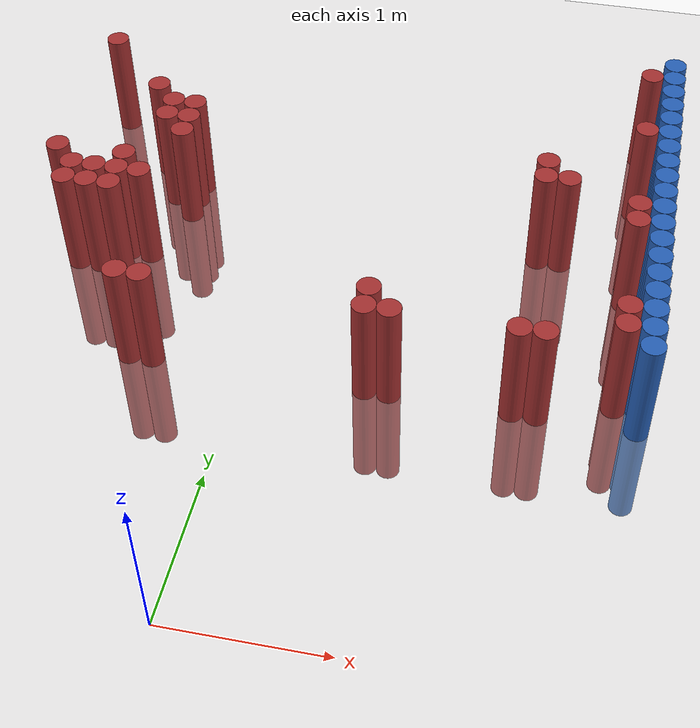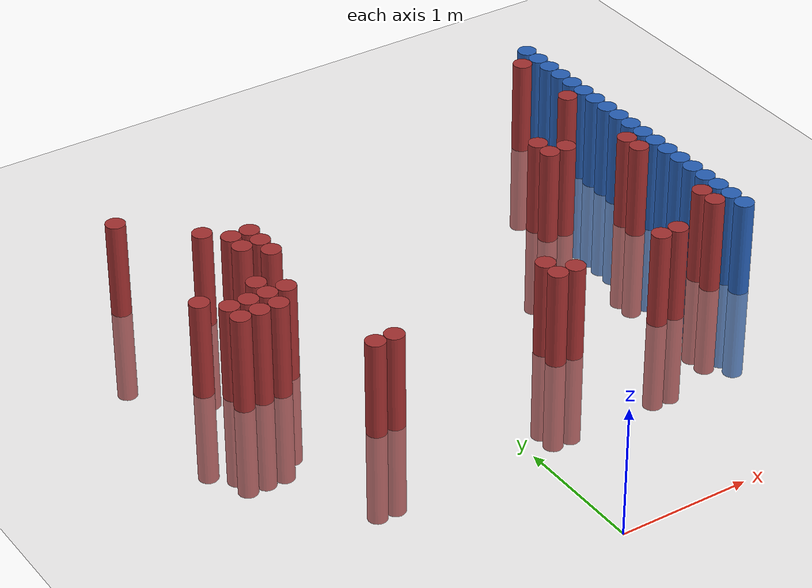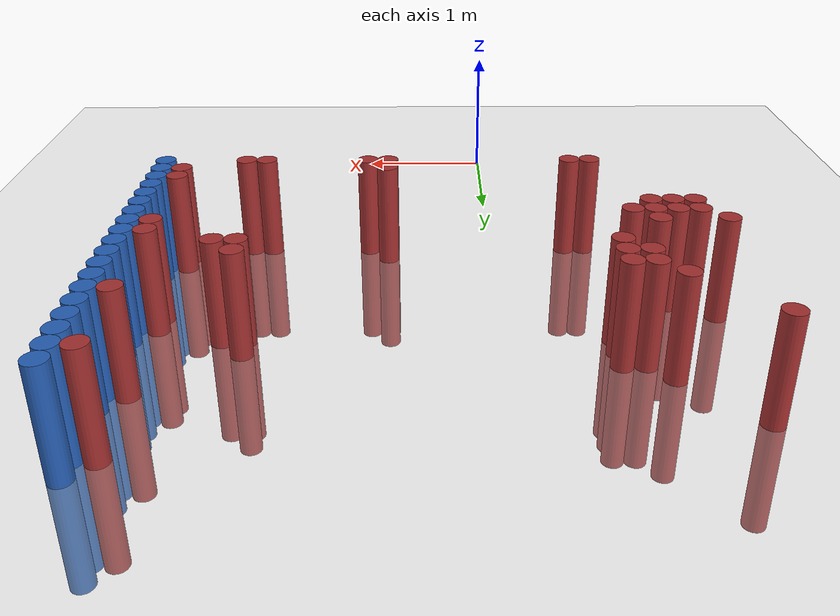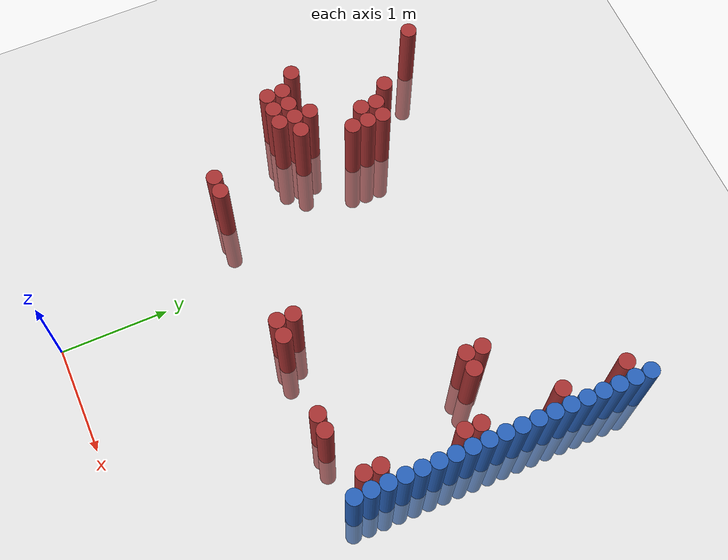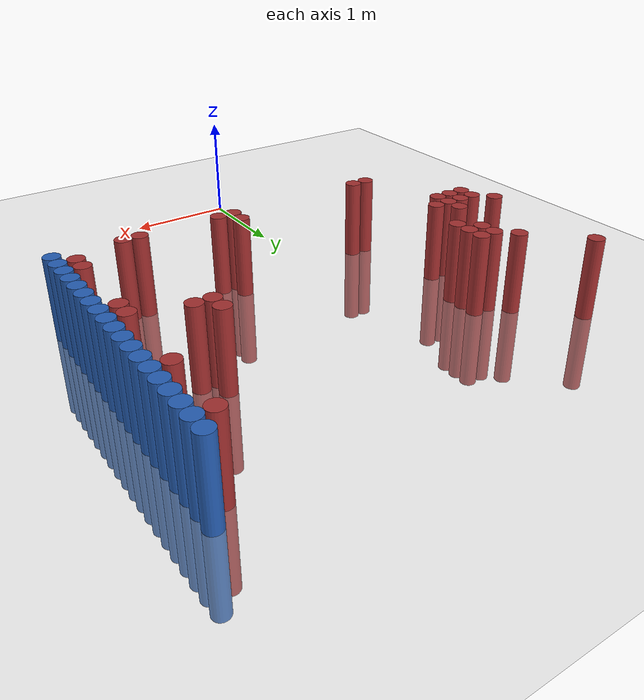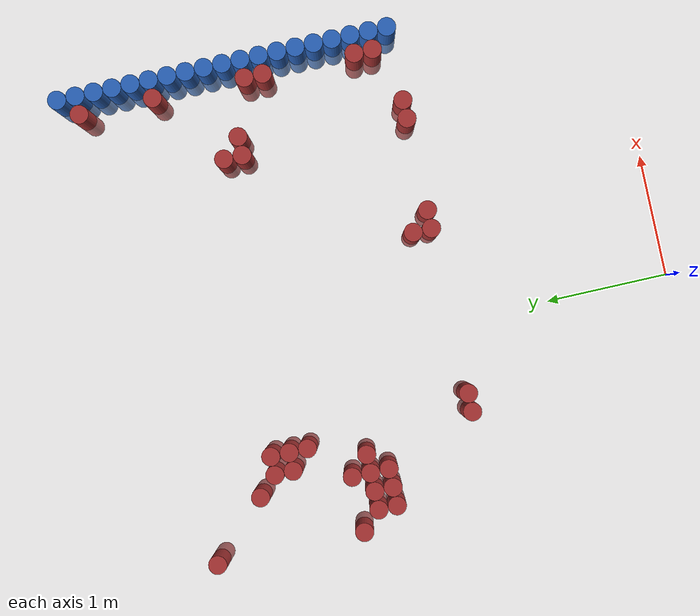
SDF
<sdf version="1.6">
 <world name="default">
  <model name="ground_plane">
   <static>1</static>
   <link name="link">
    <collision name="collision">
     <geometry><plane><normal>0 0 1</normal><size>100 100</size></plane></geometry>
     <surface><friction><ode><mu>100</mu><mu2>50</mu2></ode></friction></surface>
    </collision>
    <visual name="visual">
     <cast_shadows>0</cast_shadows>
     <geometry><plane><normal>0 0 1</normal><size>100 100</size></plane></geometry>
     <material>
      <script><uri>file://media/materials/scripts/gazebo.material</uri><name>Gazebo/Grey</name></script>
     </material>
    </visual>
   </link>
  </model>
  <model name="unit_cylinder_149">
   <static>1</static>
   <pose>-1.475000 2.875000 0.000000 0.000000 0.000000 0.000000</pose>
   <link name="link">
    <inertial>
     <mass>1</mass>
     <inertia><ixx>0.145833</ixx><ixy>0</ixy><ixz>0</ixz><iyy>0.145833</iyy><iyz>0</iyz><izz>0.125</izz></inertia>
    </inertial>
    <collision name="collision">
     <geometry><cylinder><radius>0.075000</radius><length>1.5</length></cylinder></geometry>
    </collision>
    <visual name="visual">
     <geometry><cylinder><radius>0.075000</radius><length>1.5</length></cylinder></geometry>
     <material>
      <ambient>0.648000 0.192000 0.192000 1</ambient>
      <diffuse>0.648000 0.192000 0.192000 1</diffuse>
     </material>
     <material>
      <script><name>Gazebo/Grey</name><uri>file://media/materials/scripts/gazebo.material</uri></script>
     </material>
    </visual>
   </link>
  </model>
  <model name="unit_cylinder_150">
   <static>1</static>
   <pose>-1.475000 4.075000 0.000000 0.000000 0.000000 0.000000</pose>
   <link name="link">
    <inertial>
     <mass>1</mass>
     <inertia><ixx>0.145833</ixx><ixy>0</ixy><ixz>0</ixz><iyy>0.145833</iyy><iyz>0</iyz><izz>0.125</izz></inertia>
    </inertial>
    <collision name="collision">
     <geometry><cylinder><radius>0.075000</radius><length>1.5</length></cylinder></geometry>
    </collision>
    <visual name="visual">
     <geometry><cylinder><radius>0.075000</radius><length>1.5</length></cylinder></geometry>
     <material>
      <ambient>0.648000 0.192000 0.192000 1</ambient>
      <diffuse>0.648000 0.192000 0.192000 1</diffuse>
     </material>
     <material>
      <script><name>Gazebo/Grey</name><uri>file://media/materials/scripts/gazebo.material</uri></script>
     </material>
    </visual>
   </link>
  </model>
  <model name="unit_cylinder_151">
   <static>1</static>
   <pose>-1.325000 2.575000 0.000000 0.000000 0.000000 0.000000</pose>
   <link name="link">
    <inertial>
     <mass>1</mass>
     <inertia><ixx>0.145833</ixx><ixy>0</ixy><ixz>0</ixz><iyy>0.145833</iyy><iyz>0</iyz><izz>0.125</izz></inertia>
    </inertial>
    <collision name="collision">
     <geometry><cylinder><radius>0.075000</radius><length>1.5</length></cylinder></geometry>
    </collision>
    <visual name="visual">
     <geometry><cylinder><radius>0.075000</radius><length>1.5</length></cylinder></geometry>
     <material>
      <ambient>0.648000 0.192000 0.192000 1</ambient>
      <diffuse>0.648000 0.192000 0.192000 1</diffuse>
     </material>
     <material>
      <script><name>Gazebo/Grey</name><uri>file://media/materials/scripts/gazebo.material</uri></script>
     </material>
    </visual>
   </link>
  </model>
  <model name="unit_cylinder_152">
   <static>1</static>
   <pose>-1.325000 2.725000 0.000000 0.000000 0.000000 0.000000</pose>
   <link name="link">
    <inertial>
     <mass>1</mass>
     <inertia><ixx>0.145833</ixx><ixy>0</ixy><ixz>0</ixz><iyy>0.145833</iyy><iyz>0</iyz><izz>0.125</izz></inertia>
    </inertial>
    <collision name="collision">
     <geometry><cylinder><radius>0.075000</radius><length>1.5</length></cylinder></geometry>
    </collision>
    <visual name="visual">
     <geometry><cylinder><radius>0.075000</radius><length>1.5</length></cylinder></geometry>
     <material>
      <ambient>0.648000 0.192000 0.192000 1</ambient>
      <diffuse>0.648000 0.192000 0.192000 1</diffuse>
     </material>
     <material>
      <script><name>Gazebo/Grey</name><uri>file://media/materials/scripts/gazebo.material</uri></script>
     </material>
    </visual>
   </link>
  </model>
  <model name="unit_cylinder_153">
   <static>1</static>
   <pose>-1.175000 2.575000 0.000000 0.000000 0.000000 0.000000</pose>
   <link name="link">
    <inertial>
     <mass>1</mass>
     <inertia><ixx>0.145833</ixx><ixy>0</ixy><ixz>0</ixz><iyy>0.145833</iyy><iyz>0</iyz><izz>0.125</izz></inertia>
    </inertial>
    <collision name="collision">
     <geometry><cylinder><radius>0.075000</radius><length>1.5</length></cylinder></geometry>
    </collision>
    <visual name="visual">
     <geometry><cylinder><radius>0.075000</radius><length>1.5</length></cylinder></geometry>
     <material>
      <ambient>0.648000 0.192000 0.192000 1</ambient>
      <diffuse>0.648000 0.192000 0.192000 1</diffuse>
     </material>
     <material>
      <script><name>Gazebo/Grey</name><uri>file://media/materials/scripts/gazebo.material</uri></script>
     </material>
    </visual>
   </link>
  </model>
  <model name="unit_cylinder_154">
   <static>1</static>
   <pose>-1.175000 2.725000 0.000000 0.000000 0.000000 0.000000</pose>
   <link name="link">
    <inertial>
     <mass>1</mass>
     <inertia><ixx>0.145833</ixx><ixy>0</ixy><ixz>0</ixz><iyy>0.145833</iyy><iyz>0</iyz><izz>0.125</izz></inertia>
    </inertial>
    <collision name="collision">
     <geometry><cylinder><radius>0.075000</radius><length>1.5</length></cylinder></geometry>
    </collision>
    <visual name="visual">
     <geometry><cylinder><radius>0.075000</radius><length>1.5</length></cylinder></geometry>
     <material>
      <ambient>0.648000 0.192000 0.192000 1</ambient>
      <diffuse>0.648000 0.192000 0.192000 1</diffuse>
     </material>
     <material>
      <script><name>Gazebo/Grey</name><uri>file://media/materials/scripts/gazebo.material</uri></script>
     </material>
    </visual>
   </link>
  </model>
  <model name="unit_cylinder_155">
   <static>1</static>
   <pose>-1.025000 2.575000 0.000000 0.000000 0.000000 0.000000</pose>
   <link name="link">
    <inertial>
     <mass>1</mass>
     <inertia><ixx>0.145833</ixx><ixy>0</ixy><ixz>0</ixz><iyy>0.145833</iyy><iyz>0</iyz><izz>0.125</izz></inertia>
    </inertial>
    <collision name="collision">
     <geometry><cylinder><radius>0.075000</radius><length>1.5</length></cylinder></geometry>
    </collision>
    <visual name="visual">
     <geometry><cylinder><radius>0.075000</radius><length>1.5</length></cylinder></geometry>
     <material>
      <ambient>0.648000 0.192000 0.192000 1</ambient>
      <diffuse>0.648000 0.192000 0.192000 1</diffuse>
     </material>
     <material>
      <script><name>Gazebo/Grey</name><uri>file://media/materials/scripts/gazebo.material</uri></script>
     </material>
    </visual>
   </link>
  </model>
  <model name="unit_cylinder_156">
   <static>1</static>
   <pose>-1.025000 2.725000 0.000000 0.000000 0.000000 0.000000</pose>
   <link name="link">
    <inertial>
     <mass>1</mass>
     <inertia><ixx>0.145833</ixx><ixy>0</ixy><ixz>0</ixz><iyy>0.145833</iyy><iyz>0</iyz><izz>0.125</izz></inertia>
    </inertial>
    <collision name="collision">
     <geometry><cylinder><radius>0.075000</radius><length>1.5</length></cylinder></geometry>
    </collision>
    <visual name="visual">
     <geometry><cylinder><radius>0.075000</radius><length>1.5</length></cylinder></geometry>
     <material>
      <ambient>0.648000 0.192000 0.192000 1</ambient>
      <diffuse>0.648000 0.192000 0.192000 1</diffuse>
     </material>
     <material>
      <script><name>Gazebo/Grey</name><uri>file://media/materials/scripts/gazebo.material</uri></script>
     </material>
    </visual>
   </link>
  </model>
  <model name="unit_cylinder_157">
   <static>1</static>
   <pose>-1.025000 2.875000 0.000000 0.000000 0.000000 0.000000</pose>
   <link name="link">
    <inertial>
     <mass>1</mass>
     <inertia><ixx>0.145833</ixx><ixy>0</ixy><ixz>0</ixz><iyy>0.145833</iyy><iyz>0</iyz><izz>0.125</izz></inertia>
    </inertial>
    <collision name="collision">
     <geometry><cylinder><radius>0.075000</radius><length>1.5</length></cylinder></geometry>
    </collision>
    <visual name="visual">
     <geometry><cylinder><radius>0.075000</radius><length>1.5</length></cylinder></geometry>
     <material>
      <ambient>0.648000 0.192000 0.192000 1</ambient>
      <diffuse>0.648000 0.192000 0.192000 1</diffuse>
     </material>
     <material>
      <script><name>Gazebo/Grey</name><uri>file://media/materials/scripts/gazebo.material</uri></script>
     </material>
    </visual>
   </link>
  </model>
  <model name="unit_cylinder_158">
   <static>1</static>
   <pose>-1.025000 3.625000 0.000000 0.000000 0.000000 0.000000</pose>
   <link name="link">
    <inertial>
     <mass>1</mass>
     <inertia><ixx>0.145833</ixx><ixy>0</ixy><ixz>0</ixz><iyy>0.145833</iyy><iyz>0</iyz><izz>0.125</izz></inertia>
    </inertial>
    <collision name="collision">
     <geometry><cylinder><radius>0.075000</radius><length>1.5</length></cylinder></geometry>
    </collision>
    <visual name="visual">
     <geometry><cylinder><radius>0.075000</radius><length>1.5</length></cylinder></geometry>
     <material>
      <ambient>0.648000 0.192000 0.192000 1</ambient>
      <diffuse>0.648000 0.192000 0.192000 1</diffuse>
     </material>
     <material>
      <script><name>Gazebo/Grey</name><uri>file://media/materials/scripts/gazebo.material</uri></script>
     </material>
    </visual>
   </link>
  </model>
  <model name="unit_cylinder_159">
   <static>1</static>
   <pose>-0.875000 2.725000 0.000000 0.000000 0.000000 0.000000</pose>
   <link name="link">
    <inertial>
     <mass>1</mass>
     <inertia><ixx>0.145833</ixx><ixy>0</ixy><ixz>0</ixz><iyy>0.145833</iyy><iyz>0</iyz><izz>0.125</izz></inertia>
    </inertial>
    <collision name="collision">
     <geometry><cylinder><radius>0.075000</radius><length>1.5</length></cylinder></geometry>
    </collision>
    <visual name="visual">
     <geometry><cylinder><radius>0.075000</radius><length>1.5</length></cylinder></geometry>
     <material>
      <ambient>0.648000 0.192000 0.192000 1</ambient>
      <diffuse>0.648000 0.192000 0.192000 1</diffuse>
     </material>
     <material>
      <script><name>Gazebo/Grey</name><uri>file://media/materials/scripts/gazebo.material</uri></script>
     </material>
    </visual>
   </link>
  </model>
  <model name="unit_cylinder_160">
   <static>1</static>
   <pose>-0.875000 3.325000 0.000000 0.000000 0.000000 0.000000</pose>
   <link name="link">
    <inertial>
     <mass>1</mass>
     <inertia><ixx>0.145833</ixx><ixy>0</ixy><ixz>0</ixz><iyy>0.145833</iyy><iyz>0</iyz><izz>0.125</izz></inertia>
    </inertial>
    <collision name="collision">
     <geometry><cylinder><radius>0.075000</radius><length>1.5</length></cylinder></geometry>
    </collision>
    <visual name="visual">
     <geometry><cylinder><radius>0.075000</radius><length>1.5</length></cylinder></geometry>
     <material>
      <ambient>0.648000 0.192000 0.192000 1</ambient>
      <diffuse>0.648000 0.192000 0.192000 1</diffuse>
     </material>
     <material>
      <script><name>Gazebo/Grey</name><uri>file://media/materials/scripts/gazebo.material</uri></script>
     </material>
    </visual>
   </link>
  </model>
  <model name="unit_cylinder_161">
   <static>1</static>
   <pose>-0.875000 3.475000 0.000000 0.000000 0.000000 0.000000</pose>
   <link name="link">
    <inertial>
     <mass>1</mass>
     <inertia><ixx>0.145833</ixx><ixy>0</ixy><ixz>0</ixz><iyy>0.145833</iyy><iyz>0</iyz><izz>0.125</izz></inertia>
    </inertial>
    <collision name="collision">
     <geometry><cylinder><radius>0.075000</radius><length>1.5</length></cylinder></geometry>
    </collision>
    <visual name="visual">
     <geometry><cylinder><radius>0.075000</radius><length>1.5</length></cylinder></geometry>
     <material>
      <ambient>0.648000 0.192000 0.192000 1</ambient>
      <diffuse>0.648000 0.192000 0.192000 1</diffuse>
     </material>
     <material>
      <script><name>Gazebo/Grey</name><uri>file://media/materials/scripts/gazebo.material</uri></script>
     </material>
    </visual>
   </link>
  </model>
  <model name="unit_cylinder_163">
   <static>1</static>
   <pose>-0.725000 1.825000 0.000000 0.000000 0.000000 0.000000</pose>
   <link name="link">
    <inertial>
     <mass>1</mass>
     <inertia><ixx>0.145833</ixx><ixy>0</ixy><ixz>0</ixz><iyy>0.145833</iyy><iyz>0</iyz><izz>0.125</izz></inertia>
    </inertial>
    <collision name="collision">
     <geometry><cylinder><radius>0.075000</radius><length>1.5</length></cylinder></geometry>
    </collision>
    <visual name="visual">
     <geometry><cylinder><radius>0.075000</radius><length>1.5</length></cylinder></geometry>
     <material>
      <ambient>0.648000 0.192000 0.192000 1</ambient>
      <diffuse>0.648000 0.192000 0.192000 1</diffuse>
     </material>
     <material>
      <script><name>Gazebo/Grey</name><uri>file://media/materials/scripts/gazebo.material</uri></script>
     </material>
    </visual>
   </link>
  </model>
  <model name="unit_cylinder_164">
   <static>1</static>
   <pose>-0.725000 3.175000 0.000000 0.000000 0.000000 0.000000</pose>
   <link name="link">
    <inertial>
     <mass>1</mass>
     <inertia><ixx>0.145833</ixx><ixy>0</ixy><ixz>0</ixz><iyy>0.145833</iyy><iyz>0</iyz><izz>0.125</izz></inertia>
    </inertial>
    <collision name="collision">
     <geometry><cylinder><radius>0.075000</radius><length>1.5</length></cylinder></geometry>
    </collision>
    <visual name="visual">
     <geometry><cylinder><radius>0.075000</radius><length>1.5</length></cylinder></geometry>
     <material>
      <ambient>0.648000 0.192000 0.192000 1</ambient>
      <diffuse>0.648000 0.192000 0.192000 1</diffuse>
     </material>
     <material>
      <script><name>Gazebo/Grey</name><uri>file://media/materials/scripts/gazebo.material</uri></script>
     </material>
    </visual>
   </link>
  </model>
  <model name="unit_cylinder_165">
   <static>1</static>
   <pose>-0.725000 3.325000 0.000000 0.000000 0.000000 0.000000</pose>
   <link name="link">
    <inertial>
     <mass>1</mass>
     <inertia><ixx>0.145833</ixx><ixy>0</ixy><ixz>0</ixz><iyy>0.145833</iyy><iyz>0</iyz><izz>0.125</izz></inertia>
    </inertial>
    <collision name="collision">
     <geometry><cylinder><radius>0.075000</radius><length>1.5</length></cylinder></geometry>
    </collision>
    <visual name="visual">
     <geometry><cylinder><radius>0.075000</radius><length>1.5</length></cylinder></geometry>
     <material>
      <ambient>0.648000 0.192000 0.192000 1</ambient>
      <diffuse>0.648000 0.192000 0.192000 1</diffuse>
     </material>
     <material>
      <script><name>Gazebo/Grey</name><uri>file://media/materials/scripts/gazebo.material</uri></script>
     </material>
    </visual>
   </link>
  </model>
  <model name="unit_cylinder_166">
   <static>1</static>
   <pose>-0.725000 3.475000 0.000000 0.000000 0.000000 0.000000</pose>
   <link name="link">
    <inertial>
     <mass>1</mass>
     <inertia><ixx>0.145833</ixx><ixy>0</ixy><ixz>0</ixz><iyy>0.145833</iyy><iyz>0</iyz><izz>0.125</izz></inertia>
    </inertial>
    <collision name="collision">
     <geometry><cylinder><radius>0.075000</radius><length>1.5</length></cylinder></geometry>
    </collision>
    <visual name="visual">
     <geometry><cylinder><radius>0.075000</radius><length>1.5</length></cylinder></geometry>
     <material>
      <ambient>0.648000 0.192000 0.192000 1</ambient>
      <diffuse>0.648000 0.192000 0.192000 1</diffuse>
     </material>
     <material>
      <script><name>Gazebo/Grey</name><uri>file://media/materials/scripts/gazebo.material</uri></script>
     </material>
    </visual>
   </link>
  </model>
  <model name="unit_cylinder_170">
   <static>1</static>
   <pose>-0.575000 1.825000 0.000000 0.000000 0.000000 0.000000</pose>
   <link name="link">
    <inertial>
     <mass>1</mass>
     <inertia><ixx>0.145833</ixx><ixy>0</ixy><ixz>0</ixz><iyy>0.145833</iyy><iyz>0</iyz><izz>0.125</izz></inertia>
    </inertial>
    <collision name="collision">
     <geometry><cylinder><radius>0.075000</radius><length>1.5</length></cylinder></geometry>
    </collision>
    <visual name="visual">
     <geometry><cylinder><radius>0.075000</radius><length>1.5</length></cylinder></geometry>
     <material>
      <ambient>0.648000 0.192000 0.192000 1</ambient>
      <diffuse>0.648000 0.192000 0.192000 1</diffuse>
     </material>
     <material>
      <script><name>Gazebo/Grey</name><uri>file://media/materials/scripts/gazebo.material</uri></script>
     </material>
    </visual>
   </link>
  </model>
  <model name="unit_cylinder_179">
   <static>1</static>
   <pose>0.775000 1.825000 0.000000 0.000000 0.000000 0.000000</pose>
   <link name="link">
    <inertial>
     <mass>1</mass>
     <inertia><ixx>0.145833</ixx><ixy>0</ixy><ixz>0</ixz><iyy>0.145833</iyy><iyz>0</iyz><izz>0.125</izz></inertia>
    </inertial>
    <collision name="collision">
     <geometry><cylinder><radius>0.075000</radius><length>1.5</length></cylinder></geometry>
    </collision>
    <visual name="visual">
     <geometry><cylinder><radius>0.075000</radius><length>1.5</length></cylinder></geometry>
     <material>
      <ambient>0.648000 0.192000 0.192000 1</ambient>
      <diffuse>0.648000 0.192000 0.192000 1</diffuse>
     </material>
     <material>
      <script><name>Gazebo/Grey</name><uri>file://media/materials/scripts/gazebo.material</uri></script>
     </material>
    </visual>
   </link>
  </model>
  <model name="unit_cylinder_180">
   <static>1</static>
   <pose>0.775000 1.975000 0.000000 0.000000 0.000000 0.000000</pose>
   <link name="link">
    <inertial>
     <mass>1</mass>
     <inertia><ixx>0.145833</ixx><ixy>0</ixy><ixz>0</ixz><iyy>0.145833</iyy><iyz>0</iyz><izz>0.125</izz></inertia>
    </inertial>
    <collision name="collision">
     <geometry><cylinder><radius>0.075000</radius><length>1.5</length></cylinder></geometry>
    </collision>
    <visual name="visual">
     <geometry><cylinder><radius>0.075000</radius><length>1.5</length></cylinder></geometry>
     <material>
      <ambient>0.648000 0.192000 0.192000 1</ambient>
      <diffuse>0.648000 0.192000 0.192000 1</diffuse>
     </material>
     <material>
      <script><name>Gazebo/Grey</name><uri>file://media/materials/scripts/gazebo.material</uri></script>
     </material>
    </visual>
   </link>
  </model>
  <model name="unit_cylinder_181">
   <static>1</static>
   <pose>0.925000 1.825000 0.000000 0.000000 0.000000 0.000000</pose>
   <link name="link">
    <inertial>
     <mass>1</mass>
     <inertia><ixx>0.145833</ixx><ixy>0</ixy><ixz>0</ixz><iyy>0.145833</iyy><iyz>0</iyz><izz>0.125</izz></inertia>
    </inertial>
    <collision name="collision">
     <geometry><cylinder><radius>0.075000</radius><length>1.5</length></cylinder></geometry>
    </collision>
    <visual name="visual">
     <geometry><cylinder><radius>0.075000</radius><length>1.5</length></cylinder></geometry>
     <material>
      <ambient>0.648000 0.192000 0.192000 1</ambient>
      <diffuse>0.648000 0.192000 0.192000 1</diffuse>
     </material>
     <material>
      <script><name>Gazebo/Grey</name><uri>file://media/materials/scripts/gazebo.material</uri></script>
     </material>
    </visual>
   </link>
  </model>
  <model name="unit_cylinder_191">
   <static>1</static>
   <pose>1.675000 1.825000 0.000000 0.000000 0.000000 0.000000</pose>
   <link name="link">
    <inertial>
     <mass>1</mass>
     <inertia><ixx>0.145833</ixx><ixy>0</ixy><ixz>0</ixz><iyy>0.145833</iyy><iyz>0</iyz><izz>0.125</izz></inertia>
    </inertial>
    <collision name="collision">
     <geometry><cylinder><radius>0.075000</radius><length>1.5</length></cylinder></geometry>
    </collision>
    <visual name="visual">
     <geometry><cylinder><radius>0.075000</radius><length>1.5</length></cylinder></geometry>
     <material>
      <ambient>0.648000 0.192000 0.192000 1</ambient>
      <diffuse>0.648000 0.192000 0.192000 1</diffuse>
     </material>
     <material>
      <script><name>Gazebo/Grey</name><uri>file://media/materials/scripts/gazebo.material</uri></script>
     </material>
    </visual>
   </link>
  </model>
  <model name="unit_cylinder_192">
   <static>1</static>
   <pose>1.675000 3.175000 0.000000 0.000000 0.000000 0.000000</pose>
   <link name="link">
    <inertial>
     <mass>1</mass>
     <inertia><ixx>0.145833</ixx><ixy>0</ixy><ixz>0</ixz><iyy>0.145833</iyy><iyz>0</iyz><izz>0.125</izz></inertia>
    </inertial>
    <collision name="collision">
     <geometry><cylinder><radius>0.075000</radius><length>1.5</length></cylinder></geometry>
    </collision>
    <visual name="visual">
     <geometry><cylinder><radius>0.075000</radius><length>1.5</length></cylinder></geometry>
     <material>
      <ambient>0.648000 0.192000 0.192000 1</ambient>
      <diffuse>0.648000 0.192000 0.192000 1</diffuse>
     </material>
     <material>
      <script><name>Gazebo/Grey</name><uri>file://media/materials/scripts/gazebo.material</uri></script>
     </material>
    </visual>
   </link>
  </model>
  <model name="unit_cylinder_193">
   <static>1</static>
   <pose>1.675000 3.325000 0.000000 0.000000 0.000000 0.000000</pose>
   <link name="link">
    <inertial>
     <mass>1</mass>
     <inertia><ixx>0.145833</ixx><ixy>0</ixy><ixz>0</ixz><iyy>0.145833</iyy><iyz>0</iyz><izz>0.125</izz></inertia>
    </inertial>
    <collision name="collision">
     <geometry><cylinder><radius>0.075000</radius><length>1.5</length></cylinder></geometry>
    </collision>
    <visual name="visual">
     <geometry><cylinder><radius>0.075000</radius><length>1.5</length></cylinder></geometry>
     <material>
      <ambient>0.648000 0.192000 0.192000 1</ambient>
      <diffuse>0.648000 0.192000 0.192000 1</diffuse>
     </material>
     <material>
      <script><name>Gazebo/Grey</name><uri>file://media/materials/scripts/gazebo.material</uri></script>
     </material>
    </visual>
   </link>
  </model>
  <model name="unit_cylinder_200">
   <static>1</static>
   <pose>1.825000 1.825000 0.000000 0.000000 0.000000 0.000000</pose>
   <link name="link">
    <inertial>
     <mass>1</mass>
     <inertia><ixx>0.145833</ixx><ixy>0</ixy><ixz>0</ixz><iyy>0.145833</iyy><iyz>0</iyz><izz>0.125</izz></inertia>
    </inertial>
    <collision name="collision">
     <geometry><cylinder><radius>0.075000</radius><length>1.5</length></cylinder></geometry>
    </collision>
    <visual name="visual">
     <geometry><cylinder><radius>0.075000</radius><length>1.5</length></cylinder></geometry>
     <material>
      <ambient>0.648000 0.192000 0.192000 1</ambient>
      <diffuse>0.648000 0.192000 0.192000 1</diffuse>
     </material>
     <material>
      <script><name>Gazebo/Grey</name><uri>file://media/materials/scripts/gazebo.material</uri></script>
     </material>
    </visual>
   </link>
  </model>
  <model name="unit_cylinder_201">
   <static>1</static>
   <pose>1.825000 3.175000 0.000000 0.000000 0.000000 0.000000</pose>
   <link name="link">
    <inertial>
     <mass>1</mass>
     <inertia><ixx>0.145833</ixx><ixy>0</ixy><ixz>0</ixz><iyy>0.145833</iyy><iyz>0</iyz><izz>0.125</izz></inertia>
    </inertial>
    <collision name="collision">
     <geometry><cylinder><radius>0.075000</radius><length>1.5</length></cylinder></geometry>
    </collision>
    <visual name="visual">
     <geometry><cylinder><radius>0.075000</radius><length>1.5</length></cylinder></geometry>
     <material>
      <ambient>0.648000 0.192000 0.192000 1</ambient>
      <diffuse>0.648000 0.192000 0.192000 1</diffuse>
     </material>
     <material>
      <script><name>Gazebo/Grey</name><uri>file://media/materials/scripts/gazebo.material</uri></script>
     </material>
    </visual>
   </link>
  </model>
  <model name="unit_cylinder_219">
   <static>1</static>
   <pose>2.275000 1.975000 0.000000 0.000000 0.000000 0.000000</pose>
   <link name="link">
    <inertial>
     <mass>1</mass>
     <inertia><ixx>0.145833</ixx><ixy>0</ixy><ixz>0</ixz><iyy>0.145833</iyy><iyz>0</iyz><izz>0.125</izz></inertia>
    </inertial>
    <collision name="collision">
     <geometry><cylinder><radius>0.075000</radius><length>1.5</length></cylinder></geometry>
    </collision>
    <visual name="visual">
     <geometry><cylinder><radius>0.075000</radius><length>1.5</length></cylinder></geometry>
     <material>
      <ambient>0.648000 0.192000 0.192000 1</ambient>
      <diffuse>0.648000 0.192000 0.192000 1</diffuse>
     </material>
     <material>
      <script><name>Gazebo/Grey</name><uri>file://media/materials/scripts/gazebo.material</uri></script>
     </material>
    </visual>
   </link>
  </model>
  <model name="unit_cylinder_220">
   <static>1</static>
   <pose>2.275000 2.125000 0.000000 0.000000 0.000000 0.000000</pose>
   <link name="link">
    <inertial>
     <mass>1</mass>
     <inertia><ixx>0.145833</ixx><ixy>0</ixy><ixz>0</ixz><iyy>0.145833</iyy><iyz>0</iyz><izz>0.125</izz></inertia>
    </inertial>
    <collision name="collision">
     <geometry><cylinder><radius>0.075000</radius><length>1.5</length></cylinder></geometry>
    </collision>
    <visual name="visual">
     <geometry><cylinder><radius>0.075000</radius><length>1.5</length></cylinder></geometry>
     <material>
      <ambient>0.648000 0.192000 0.192000 1</ambient>
      <diffuse>0.648000 0.192000 0.192000 1</diffuse>
     </material>
     <material>
      <script><name>Gazebo/Grey</name><uri>file://media/materials/scripts/gazebo.material</uri></script>
     </material>
    </visual>
   </link>
  </model>
  <model name="unit_cylinder_221">
   <static>1</static>
   <pose>2.275000 2.875000 0.000000 0.000000 0.000000 0.000000</pose>
   <link name="link">
    <inertial>
     <mass>1</mass>
     <inertia><ixx>0.145833</ixx><ixy>0</ixy><ixz>0</ixz><iyy>0.145833</iyy><iyz>0</iyz><izz>0.125</izz></inertia>
    </inertial>
    <collision name="collision">
     <geometry><cylinder><radius>0.075000</radius><length>1.5</length></cylinder></geometry>
    </collision>
    <visual name="visual">
     <geometry><cylinder><radius>0.075000</radius><length>1.5</length></cylinder></geometry>
     <material>
      <ambient>0.648000 0.192000 0.192000 1</ambient>
      <diffuse>0.648000 0.192000 0.192000 1</diffuse>
     </material>
     <material>
      <script><name>Gazebo/Grey</name><uri>file://media/materials/scripts/gazebo.material</uri></script>
     </material>
    </visual>
   </link>
  </model>
  <model name="unit_cylinder_222">
   <static>1</static>
   <pose>2.275000 3.025000 0.000000 0.000000 0.000000 0.000000</pose>
   <link name="link">
    <inertial>
     <mass>1</mass>
     <inertia><ixx>0.145833</ixx><ixy>0</ixy><ixz>0</ixz><iyy>0.145833</iyy><iyz>0</iyz><izz>0.125</izz></inertia>
    </inertial>
    <collision name="collision">
     <geometry><cylinder><radius>0.075000</radius><length>1.5</length></cylinder></geometry>
    </collision>
    <visual name="visual">
     <geometry><cylinder><radius>0.075000</radius><length>1.5</length></cylinder></geometry>
     <material>
      <ambient>0.648000 0.192000 0.192000 1</ambient>
      <diffuse>0.648000 0.192000 0.192000 1</diffuse>
     </material>
     <material>
      <script><name>Gazebo/Grey</name><uri>file://media/materials/scripts/gazebo.material</uri></script>
     </material>
    </visual>
   </link>
  </model>
  <model name="unit_cylinder_223">
   <static>1</static>
   <pose>2.275000 3.775000 0.000000 0.000000 0.000000 0.000000</pose>
   <link name="link">
    <inertial>
     <mass>1</mass>
     <inertia><ixx>0.145833</ixx><ixy>0</ixy><ixz>0</ixz><iyy>0.145833</iyy><iyz>0</iyz><izz>0.125</izz></inertia>
    </inertial>
    <collision name="collision">
     <geometry><cylinder><radius>0.075000</radius><length>1.5</length></cylinder></geometry>
    </collision>
    <visual name="visual">
     <geometry><cylinder><radius>0.075000</radius><length>1.5</length></cylinder></geometry>
     <material>
      <ambient>0.648000 0.192000 0.192000 1</ambient>
      <diffuse>0.648000 0.192000 0.192000 1</diffuse>
     </material>
     <material>
      <script><name>Gazebo/Grey</name><uri>file://media/materials/scripts/gazebo.material</uri></script>
     </material>
    </visual>
   </link>
  </model>
  <model name="unit_cylinder_224">
   <static>1</static>
   <pose>2.275000 4.375000 0.000000 0.000000 0.000000 0.000000</pose>
   <link name="link">
    <inertial>
     <mass>1</mass>
     <inertia><ixx>0.145833</ixx><ixy>0</ixy><ixz>0</ixz><iyy>0.145833</iyy><iyz>0</iyz><izz>0.125</izz></inertia>
    </inertial>
    <collision name="collision">
     <geometry><cylinder><radius>0.075000</radius><length>1.5</length></cylinder></geometry>
    </collision>
    <visual name="visual">
     <geometry><cylinder><radius>0.075000</radius><length>1.5</length></cylinder></geometry>
     <material>
      <ambient>0.648000 0.192000 0.192000 1</ambient>
      <diffuse>0.648000 0.192000 0.192000 1</diffuse>
     </material>
     <material>
      <script><name>Gazebo/Grey</name><uri>file://media/materials/scripts/gazebo.material</uri></script>
     </material>
    </visual>
   </link>
  </model>
  <model name="unit_cylinder_236">
   <static>1</static>
   <pose>2.425000 1.825000 0.000000 0.000000 0.000000 0.000000</pose>
   <link name="link">
    <inertial>
     <mass>1</mass>
     <inertia><ixx>0.145833</ixx><ixy>0</ixy><ixz>0</ixz><iyy>0.145833</iyy><iyz>0</iyz><izz>0.125</izz></inertia>
    </inertial>
    <collision name="collision">
     <geometry><cylinder><radius>0.075000</radius><length>1.5</length></cylinder></geometry>
    </collision>
    <visual name="visual">
     <geometry><cylinder><radius>0.075000</radius><length>1.5</length></cylinder></geometry>
     <material>
      <ambient>0.152000 0.379000 0.720000 1</ambient>
      <diffuse>0.152000 0.379000 0.720000 1</diffuse>
     </material>
     <material>
      <script><name>Gazebo/Grey</name><uri>file://media/materials/scripts/gazebo.material</uri></script>
     </material>
    </visual>
   </link>
  </model>
  <model name="unit_cylinder_237">
   <static>1</static>
   <pose>2.425000 1.975000 0.000000 0.000000 0.000000 0.000000</pose>
   <link name="link">
    <inertial>
     <mass>1</mass>
     <inertia><ixx>0.145833</ixx><ixy>0</ixy><ixz>0</ixz><iyy>0.145833</iyy><iyz>0</iyz><izz>0.125</izz></inertia>
    </inertial>
    <collision name="collision">
     <geometry><cylinder><radius>0.075000</radius><length>1.5</length></cylinder></geometry>
    </collision>
    <visual name="visual">
     <geometry><cylinder><radius>0.075000</radius><length>1.5</length></cylinder></geometry>
     <material>
      <ambient>0.152000 0.379000 0.720000 1</ambient>
      <diffuse>0.152000 0.379000 0.720000 1</diffuse>
     </material>
     <material>
      <script><name>Gazebo/Grey</name><uri>file://media/materials/scripts/gazebo.material</uri></script>
     </material>
    </visual>
   </link>
  </model>
  <model name="unit_cylinder_238">
   <static>1</static>
   <pose>2.425000 2.125000 0.000000 0.000000 0.000000 0.000000</pose>
   <link name="link">
    <inertial>
     <mass>1</mass>
     <inertia><ixx>0.145833</ixx><ixy>0</ixy><ixz>0</ixz><iyy>0.145833</iyy><iyz>0</iyz><izz>0.125</izz></inertia>
    </inertial>
    <collision name="collision">
     <geometry><cylinder><radius>0.075000</radius><length>1.5</length></cylinder></geometry>
    </collision>
    <visual name="visual">
     <geometry><cylinder><radius>0.075000</radius><length>1.5</length></cylinder></geometry>
     <material>
      <ambient>0.152000 0.379000 0.720000 1</ambient>
      <diffuse>0.152000 0.379000 0.720000 1</diffuse>
     </material>
     <material>
      <script><name>Gazebo/Grey</name><uri>file://media/materials/scripts/gazebo.material</uri></script>
     </material>
    </visual>
   </link>
  </model>
  <model name="unit_cylinder_239">
   <static>1</static>
   <pose>2.425000 2.275000 0.000000 0.000000 0.000000 0.000000</pose>
   <link name="link">
    <inertial>
     <mass>1</mass>
     <inertia><ixx>0.145833</ixx><ixy>0</ixy><ixz>0</ixz><iyy>0.145833</iyy><iyz>0</iyz><izz>0.125</izz></inertia>
    </inertial>
    <collision name="collision">
     <geometry><cylinder><radius>0.075000</radius><length>1.5</length></cylinder></geometry>
    </collision>
    <visual name="visual">
     <geometry><cylinder><radius>0.075000</radius><length>1.5</length></cylinder></geometry>
     <material>
      <ambient>0.152000 0.379000 0.720000 1</ambient>
      <diffuse>0.152000 0.379000 0.720000 1</diffuse>
     </material>
     <material>
      <script><name>Gazebo/Grey</name><uri>file://media/materials/scripts/gazebo.material</uri></script>
     </material>
    </visual>
   </link>
  </model>
  <model name="unit_cylinder_240">
   <static>1</static>
   <pose>2.425000 2.425000 0.000000 0.000000 0.000000 0.000000</pose>
   <link name="link">
    <inertial>
     <mass>1</mass>
     <inertia><ixx>0.145833</ixx><ixy>0</ixy><ixz>0</ixz><iyy>0.145833</iyy><iyz>0</iyz><izz>0.125</izz></inertia>
    </inertial>
    <collision name="collision">
     <geometry><cylinder><radius>0.075000</radius><length>1.5</length></cylinder></geometry>
    </collision>
    <visual name="visual">
     <geometry><cylinder><radius>0.075000</radius><length>1.5</length></cylinder></geometry>
     <material>
      <ambient>0.152000 0.379000 0.720000 1</ambient>
      <diffuse>0.152000 0.379000 0.720000 1</diffuse>
     </material>
     <material>
      <script><name>Gazebo/Grey</name><uri>file://media/materials/scripts/gazebo.material</uri></script>
     </material>
    </visual>
   </link>
  </model>
  <model name="unit_cylinder_241">
   <static>1</static>
   <pose>2.425000 2.575000 0.000000 0.000000 0.000000 0.000000</pose>
   <link name="link">
    <inertial>
     <mass>1</mass>
     <inertia><ixx>0.145833</ixx><ixy>0</ixy><ixz>0</ixz><iyy>0.145833</iyy><iyz>0</iyz><izz>0.125</izz></inertia>
    </inertial>
    <collision name="collision">
     <geometry><cylinder><radius>0.075000</radius><length>1.5</length></cylinder></geometry>
    </collision>
    <visual name="visual">
     <geometry><cylinder><radius>0.075000</radius><length>1.5</length></cylinder></geometry>
     <material>
      <ambient>0.152000 0.379000 0.720000 1</ambient>
      <diffuse>0.152000 0.379000 0.720000 1</diffuse>
     </material>
     <material>
      <script><name>Gazebo/Grey</name><uri>file://media/materials/scripts/gazebo.material</uri></script>
     </material>
    </visual>
   </link>
  </model>
  <model name="unit_cylinder_242">
   <static>1</static>
   <pose>2.425000 2.725000 0.000000 0.000000 0.000000 0.000000</pose>
   <link name="link">
    <inertial>
     <mass>1</mass>
     <inertia><ixx>0.145833</ixx><ixy>0</ixy><ixz>0</ixz><iyy>0.145833</iyy><iyz>0</iyz><izz>0.125</izz></inertia>
    </inertial>
    <collision name="collision">
     <geometry><cylinder><radius>0.075000</radius><length>1.5</length></cylinder></geometry>
    </collision>
    <visual name="visual">
     <geometry><cylinder><radius>0.075000</radius><length>1.5</length></cylinder></geometry>
     <material>
      <ambient>0.152000 0.379000 0.720000 1</ambient>
      <diffuse>0.152000 0.379000 0.720000 1</diffuse>
     </material>
     <material>
      <script><name>Gazebo/Grey</name><uri>file://media/materials/scripts/gazebo.material</uri></script>
     </material>
    </visual>
   </link>
  </model>
  <model name="unit_cylinder_243">
   <static>1</static>
   <pose>2.425000 2.875000 0.000000 0.000000 0.000000 0.000000</pose>
   <link name="link">
    <inertial>
     <mass>1</mass>
     <inertia><ixx>0.145833</ixx><ixy>0</ixy><ixz>0</ixz><iyy>0.145833</iyy><iyz>0</iyz><izz>0.125</izz></inertia>
    </inertial>
    <collision name="collision">
     <geometry><cylinder><radius>0.075000</radius><length>1.5</length></cylinder></geometry>
    </collision>
    <visual name="visual">
     <geometry><cylinder><radius>0.075000</radius><length>1.5</length></cylinder></geometry>
     <material>
      <ambient>0.152000 0.379000 0.720000 1</ambient>
      <diffuse>0.152000 0.379000 0.720000 1</diffuse>
     </material>
     <material>
      <script><name>Gazebo/Grey</name><uri>file://media/materials/scripts/gazebo.material</uri></script>
     </material>
    </visual>
   </link>
  </model>
  <model name="unit_cylinder_244">
   <static>1</static>
   <pose>2.425000 3.025000 0.000000 0.000000 0.000000 0.000000</pose>
   <link name="link">
    <inertial>
     <mass>1</mass>
     <inertia><ixx>0.145833</ixx><ixy>0</ixy><ixz>0</ixz><iyy>0.145833</iyy><iyz>0</iyz><izz>0.125</izz></inertia>
    </inertial>
    <collision name="collision">
     <geometry><cylinder><radius>0.075000</radius><length>1.5</length></cylinder></geometry>
    </collision>
    <visual name="visual">
     <geometry><cylinder><radius>0.075000</radius><length>1.5</length></cylinder></geometry>
     <material>
      <ambient>0.152000 0.379000 0.720000 1</ambient>
      <diffuse>0.152000 0.379000 0.720000 1</diffuse>
     </material>
     <material>
      <script><name>Gazebo/Grey</name><uri>file://media/materials/scripts/gazebo.material</uri></script>
     </material>
    </visual>
   </link>
  </model>
  <model name="unit_cylinder_245">
   <static>1</static>
   <pose>2.425000 3.175000 0.000000 0.000000 0.000000 0.000000</pose>
   <link name="link">
    <inertial>
     <mass>1</mass>
     <inertia><ixx>0.145833</ixx><ixy>0</ixy><ixz>0</ixz><iyy>0.145833</iyy><iyz>0</iyz><izz>0.125</izz></inertia>
    </inertial>
    <collision name="collision">
     <geometry><cylinder><radius>0.075000</radius><length>1.5</length></cylinder></geometry>
    </collision>
    <visual name="visual">
     <geometry><cylinder><radius>0.075000</radius><length>1.5</length></cylinder></geometry>
     <material>
      <ambient>0.152000 0.379000 0.720000 1</ambient>
      <diffuse>0.152000 0.379000 0.720000 1</diffuse>
     </material>
     <material>
      <script><name>Gazebo/Grey</name><uri>file://media/materials/scripts/gazebo.material</uri></script>
     </material>
    </visual>
   </link>
  </model>
  <model name="unit_cylinder_246">
   <static>1</static>
   <pose>2.425000 3.325000 0.000000 0.000000 0.000000 0.000000</pose>
   <link name="link">
    <inertial>
     <mass>1</mass>
     <inertia><ixx>0.145833</ixx><ixy>0</ixy><ixz>0</ixz><iyy>0.145833</iyy><iyz>0</iyz><izz>0.125</izz></inertia>
    </inertial>
    <collision name="collision">
     <geometry><cylinder><radius>0.075000</radius><length>1.5</length></cylinder></geometry>
    </collision>
    <visual name="visual">
     <geometry><cylinder><radius>0.075000</radius><length>1.5</length></cylinder></geometry>
     <material>
      <ambient>0.152000 0.379000 0.720000 1</ambient>
      <diffuse>0.152000 0.379000 0.720000 1</diffuse>
     </material>
     <material>
      <script><name>Gazebo/Grey</name><uri>file://media/materials/scripts/gazebo.material</uri></script>
     </material>
    </visual>
   </link>
  </model>
  <model name="unit_cylinder_247">
   <static>1</static>
   <pose>2.425000 3.475000 0.000000 0.000000 0.000000 0.000000</pose>
   <link name="link">
    <inertial>
     <mass>1</mass>
     <inertia><ixx>0.145833</ixx><ixy>0</ixy><ixz>0</ixz><iyy>0.145833</iyy><iyz>0</iyz><izz>0.125</izz></inertia>
    </inertial>
    <collision name="collision">
     <geometry><cylinder><radius>0.075000</radius><length>1.5</length></cylinder></geometry>
    </collision>
    <visual name="visual">
     <geometry><cylinder><radius>0.075000</radius><length>1.5</length></cylinder></geometry>
     <material>
      <ambient>0.152000 0.379000 0.720000 1</ambient>
      <diffuse>0.152000 0.379000 0.720000 1</diffuse>
     </material>
     <material>
      <script><name>Gazebo/Grey</name><uri>file://media/materials/scripts/gazebo.material</uri></script>
     </material>
    </visual>
   </link>
  </model>
  <model name="unit_cylinder_248">
   <static>1</static>
   <pose>2.425000 3.625000 0.000000 0.000000 0.000000 0.000000</pose>
   <link name="link">
    <inertial>
     <mass>1</mass>
     <inertia><ixx>0.145833</ixx><ixy>0</ixy><ixz>0</ixz><iyy>0.145833</iyy><iyz>0</iyz><izz>0.125</izz></inertia>
    </inertial>
    <collision name="collision">
     <geometry><cylinder><radius>0.075000</radius><length>1.5</length></cylinder></geometry>
    </collision>
    <visual name="visual">
     <geometry><cylinder><radius>0.075000</radius><length>1.5</length></cylinder></geometry>
     <material>
      <ambient>0.152000 0.379000 0.720000 1</ambient>
      <diffuse>0.152000 0.379000 0.720000 1</diffuse>
     </material>
     <material>
      <script><name>Gazebo/Grey</name><uri>file://media/materials/scripts/gazebo.material</uri></script>
     </material>
    </visual>
   </link>
  </model>
  <model name="unit_cylinder_249">
   <static>1</static>
   <pose>2.425000 3.775000 0.000000 0.000000 0.000000 0.000000</pose>
   <link name="link">
    <inertial>
     <mass>1</mass>
     <inertia><ixx>0.145833</ixx><ixy>0</ixy><ixz>0</ixz><iyy>0.145833</iyy><iyz>0</iyz><izz>0.125</izz></inertia>
    </inertial>
    <collision name="collision">
     <geometry><cylinder><radius>0.075000</radius><length>1.5</length></cylinder></geometry>
    </collision>
    <visual name="visual">
     <geometry><cylinder><radius>0.075000</radius><length>1.5</length></cylinder></geometry>
     <material>
      <ambient>0.152000 0.379000 0.720000 1</ambient>
      <diffuse>0.152000 0.379000 0.720000 1</diffuse>
     </material>
     <material>
      <script><name>Gazebo/Grey</name><uri>file://media/materials/scripts/gazebo.material</uri></script>
     </material>
    </visual>
   </link>
  </model>
  <model name="unit_cylinder_250">
   <static>1</static>
   <pose>2.425000 3.925000 0.000000 0.000000 0.000000 0.000000</pose>
   <link name="link">
    <inertial>
     <mass>1</mass>
     <inertia><ixx>0.145833</ixx><ixy>0</ixy><ixz>0</ixz><iyy>0.145833</iyy><iyz>0</iyz><izz>0.125</izz></inertia>
    </inertial>
    <collision name="collision">
     <geometry><cylinder><radius>0.075000</radius><length>1.5</length></cylinder></geometry>
    </collision>
    <visual name="visual">
     <geometry><cylinder><radius>0.075000</radius><length>1.5</length></cylinder></geometry>
     <material>
      <ambient>0.152000 0.379000 0.720000 1</ambient>
      <diffuse>0.152000 0.379000 0.720000 1</diffuse>
     </material>
     <material>
      <script><name>Gazebo/Grey</name><uri>file://media/materials/scripts/gazebo.material</uri></script>
     </material>
    </visual>
   </link>
  </model>
  <model name="unit_cylinder_251">
   <static>1</static>
   <pose>2.425000 4.075000 0.000000 0.000000 0.000000 0.000000</pose>
   <link name="link">
    <inertial>
     <mass>1</mass>
     <inertia><ixx>0.145833</ixx><ixy>0</ixy><ixz>0</ixz><iyy>0.145833</iyy><iyz>0</iyz><izz>0.125</izz></inertia>
    </inertial>
    <collision name="collision">
     <geometry><cylinder><radius>0.075000</radius><length>1.5</length></cylinder></geometry>
    </collision>
    <visual name="visual">
     <geometry><cylinder><radius>0.075000</radius><length>1.5</length></cylinder></geometry>
     <material>
      <ambient>0.152000 0.379000 0.720000 1</ambient>
      <diffuse>0.152000 0.379000 0.720000 1</diffuse>
     </material>
     <material>
      <script><name>Gazebo/Grey</name><uri>file://media/materials/scripts/gazebo.material</uri></script>
     </material>
    </visual>
   </link>
  </model>
  <model name="unit_cylinder_252">
   <static>1</static>
   <pose>2.425000 4.225000 0.000000 0.000000 0.000000 0.000000</pose>
   <link name="link">
    <inertial>
     <mass>1</mass>
     <inertia><ixx>0.145833</ixx><ixy>0</ixy><ixz>0</ixz><iyy>0.145833</iyy><iyz>0</iyz><izz>0.125</izz></inertia>
    </inertial>
    <collision name="collision">
     <geometry><cylinder><radius>0.075000</radius><length>1.5</length></cylinder></geometry>
    </collision>
    <visual name="visual">
     <geometry><cylinder><radius>0.075000</radius><length>1.5</length></cylinder></geometry>
     <material>
      <ambient>0.152000 0.379000 0.720000 1</ambient>
      <diffuse>0.152000 0.379000 0.720000 1</diffuse>
     </material>
     <material>
      <script><name>Gazebo/Grey</name><uri>file://media/materials/scripts/gazebo.material</uri></script>
     </material>
    </visual>
   </link>
  </model>
  <model name="unit_cylinder_253">
   <static>1</static>
   <pose>2.425000 4.375000 0.000000 0.000000 0.000000 0.000000</pose>
   <link name="link">
    <inertial>
     <mass>1</mass>
     <inertia><ixx>0.145833</ixx><ixy>0</ixy><ixz>0</ixz><iyy>0.145833</iyy><iyz>0</iyz><izz>0.125</izz></inertia>
    </inertial>
    <collision name="collision">
     <geometry><cylinder><radius>0.075000</radius><length>1.5</length></cylinder></geometry>
    </collision>
    <visual name="visual">
     <geometry><cylinder><radius>0.075000</radius><length>1.5</length></cylinder></geometry>
     <material>
      <ambient>0.152000 0.379000 0.720000 1</ambient>
      <diffuse>0.152000 0.379000 0.720000 1</diffuse>
     </material>
     <material>
      <script><name>Gazebo/Grey</name><uri>file://media/materials/scripts/gazebo.material</uri></script>
     </material>
    </visual>
   </link>
  </model>
  <model name="unit_cylinder_254">
   <static>1</static>
   <pose>2.425000 4.525000 0.000000 0.000000 0.000000 0.000000</pose>
   <link name="link">
    <inertial>
     <mass>1</mass>
     <inertia><ixx>0.145833</ixx><ixy>0</ixy><ixz>0</ixz><iyy>0.145833</iyy><iyz>0</iyz><izz>0.125</izz></inertia>
    </inertial>
    <collision name="collision">
     <geometry><cylinder><radius>0.075000</radius><length>1.5</length></cylinder></geometry>
    </collision>
    <visual name="visual">
     <geometry><cylinder><radius>0.075000</radius><length>1.5</length></cylinder></geometry>
     <material>
      <ambient>0.152000 0.379000 0.720000 1</ambient>
      <diffuse>0.152000 0.379000 0.720000 1</diffuse>
     </material>
     <material>
      <script><name>Gazebo/Grey</name><uri>file://media/materials/scripts/gazebo.material</uri></script>
     </material>
    </visual>
   </link>
  </model>
 </world>
</sdf>
